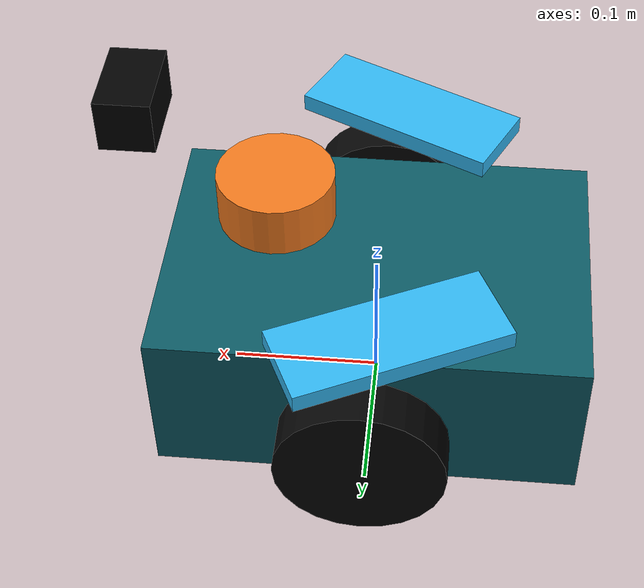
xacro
<?xml version="1.0"?>
<robot name="indoor_mapper_bot" xmlns:xacro="http://ros.org/wiki/xacro">
  <xacro:arg name="enable_3d_sensors" default="false" />

  <xacro:property name="base_length" value="0.28" />
  <xacro:property name="base_width" value="0.19" />
  <xacro:property name="base_height" value="0.11" />
  <xacro:property name="wheel_radius" value="0.055" />
  <xacro:property name="wheel_width" value="0.03" />
  <xacro:property name="wheel_y" value="0.125" />

  <link name="base_footprint" />

  <joint name="base_footprint_joint" type="fixed">
    <parent link="base_footprint" />
    <child link="base_link" />
    <origin xyz="0 0 0" />
  </joint>

  <link name="base_link">
    <inertial>
      <origin xyz="0 0 0.042" />
      <mass value="4.0" />
      <inertia ixx="0.026" ixy="0" ixz="0" iyy="0.032" iyz="0" izz="0.040" />
    </inertial>
    <visual>
      <origin xyz="0 0 ${base_height / 2.0}" />
      <geometry>
        <box size="${base_length} ${base_width} ${base_height}" />
      </geometry>
      <material name="body_teal">
        <color rgba="0.05 0.36 0.40 1" />
      </material>
    </visual>
    <collision name="base_collision">
      <origin xyz="0 0 ${base_height / 2.0 + 0.012}" />
      <geometry>
        <box size="${base_length} ${base_width} ${base_height}" />
      </geometry>
    </collision>
  </link>

  <link name="left_wheel_link">
    <inertial>
      <mass value="0.22" />
      <inertia ixx="0.00045" ixy="0" ixz="0" iyy="0.00045" iyz="0" izz="0.00045" />
    </inertial>
    <visual>
      <origin xyz="0 0 0" rpy="1.57079632679 0 0" />
      <geometry>
        <cylinder radius="${wheel_radius}" length="${wheel_width}" />
      </geometry>
      <material name="wheel_black">
        <color rgba="0.02 0.02 0.02 1" />
      </material>
    </visual>
    <collision>
      <origin xyz="0 0 0" rpy="1.57079632679 0 0" />
      <geometry>
        <cylinder radius="${wheel_radius}" length="${wheel_width}" />
      </geometry>
    </collision>
  </link>

  <link name="right_wheel_link">
    <inertial>
      <mass value="0.22" />
      <inertia ixx="0.00045" ixy="0" ixz="0" iyy="0.00045" iyz="0" izz="0.00045" />
    </inertial>
    <visual>
      <origin xyz="0 0 0" rpy="1.57079632679 0 0" />
      <geometry>
        <cylinder radius="${wheel_radius}" length="${wheel_width}" />
      </geometry>
      <material name="wheel_black" />
    </visual>
    <collision>
      <origin xyz="0 0 0" rpy="1.57079632679 0 0" />
      <geometry>
        <cylinder radius="${wheel_radius}" length="${wheel_width}" />
      </geometry>
    </collision>
  </link>

  <link name="caster_link">
    <inertial>
      <mass value="0.1" />
      <inertia ixx="0.0001" ixy="0" ixz="0" iyy="0.0001" iyz="0" izz="0.0001" />
    </inertial>
    <visual>
      <geometry>
        <sphere radius="0.024" />
      </geometry>
      <material name="wheel_black" />
    </visual>
    <collision name="left_rear_support_collision">
      <origin xyz="0 0.060 -0.006" />
      <geometry>
        <sphere radius="0.018" />
      </geometry>
    </collision>
    <collision name="right_rear_support_collision">
      <origin xyz="0 -0.060 -0.006" />
      <geometry>
        <sphere radius="0.018" />
      </geometry>
    </collision>
  </link>

  <link name="laser_link">
    <inertial>
      <mass value="0.2" />
      <inertia ixx="0.0004" ixy="0" ixz="0" iyy="0.0004" iyz="0" izz="0.0004" />
    </inertial>
    <visual>
      <geometry>
        <cylinder radius="0.038" length="0.035" />
      </geometry>
      <material name="laser_copper">
        <color rgba="0.95 0.48 0.12 1" />
      </material>
    </visual>
    <collision>
      <geometry>
        <cylinder radius="0.038" length="0.035" />
      </geometry>
    </collision>
  </link>

  <link name="camera_link">
    <inertial>
      <mass value="0.05" />
      <inertia ixx="0.00002" ixy="0" ixz="0" iyy="0.00002" iyz="0" izz="0.00002" />
    </inertial>
    <visual>
      <geometry>
        <box size="0.035 0.055 0.035" />
      </geometry>
      <material name="camera_black">
        <color rgba="0.01 0.01 0.01 1" />
      </material>
    </visual>
    <collision>
      <geometry>
        <box size="0.035 0.055 0.035" />
      </geometry>
    </collision>
  </link>

  <xacro:if value="$(arg enable_3d_sensors)">
    <link name="imu_link">
      <inertial>
        <mass value="0.02" />
        <inertia ixx="0.00001" ixy="0" ixz="0" iyy="0.00001" iyz="0" izz="0.00001" />
      </inertial>
      <visual>
        <geometry>
          <box size="0.035 0.028 0.012" />
        </geometry>
        <material name="imu_gray">
          <color rgba="0.18 0.20 0.22 1" />
        </material>
      </visual>
    </link>

    <link name="laser3d_link">
      <inertial>
        <mass value="0.18" />
        <inertia ixx="0.0003" ixy="0" ixz="0" iyy="0.0003" iyz="0" izz="0.0003" />
      </inertial>
      <visual>
        <geometry>
          <cylinder radius="0.034" length="0.045" />
        </geometry>
        <material name="laser3d_blue">
          <color rgba="0.10 0.22 0.95 1" />
        </material>
      </visual>
      <collision>
        <geometry>
          <cylinder radius="0.034" length="0.045" />
        </geometry>
      </collision>
    </link>
  </xacro:if>

  <link name="left_wing_link">
    <inertial><mass value="0.015" /><inertia ixx="0.00002" ixy="0" ixz="0" iyy="0.00002" iyz="0" izz="0.00003" /></inertial>
    <visual><geometry><box size="0.14 0.055 0.012" /></geometry><material name="wing_sky"><color rgba="0.20 0.72 0.95 1" /></material></visual>
  </link>

  <link name="right_wing_link">
    <inertial><mass value="0.015" /><inertia ixx="0.00002" ixy="0" ixz="0" iyy="0.00002" iyz="0" izz="0.00003" /></inertial>
    <visual><geometry><box size="0.14 0.055 0.012" /></geometry><material name="wing_sky" /></visual>
  </link>

  <joint name="left_wheel_joint" type="continuous">
    <parent link="base_link" />
    <child link="left_wheel_link" />
    <origin xyz="0 ${wheel_y} ${wheel_radius}" />
    <axis xyz="0 1 0" />
  </joint>

  <joint name="right_wheel_joint" type="continuous">
    <parent link="base_link" />
    <child link="right_wheel_link" />
    <origin xyz="0 -${wheel_y} ${wheel_radius}" />
    <axis xyz="0 1 0" />
  </joint>

  <joint name="caster_joint" type="fixed">
    <parent link="base_link" />
    <child link="caster_link" />
    <origin xyz="-0.105 0 0.024" />
  </joint>

  <joint name="laser_joint" type="fixed">
    <parent link="base_link" />
    <child link="laser_link" />
    <origin xyz="0.065 0 0.16" />
  </joint>

  <joint name="camera_joint" type="fixed">
    <parent link="base_link" />
    <child link="camera_link" />
    <origin xyz="0.15 0 0.23" />
  </joint>

  <xacro:if value="$(arg enable_3d_sensors)">
    <joint name="imu_joint" type="fixed">
      <parent link="base_link" />
      <child link="imu_link" />
      <origin xyz="0.0 0 0.205" />
    </joint>

    <joint name="laser3d_joint" type="fixed">
      <parent link="base_link" />
      <child link="laser3d_link" />
      <origin xyz="0.03 0 0.285" />
    </joint>
  </xacro:if>

  <joint name="left_wing_joint" type="fixed">
    <parent link="base_link" /><child link="left_wing_link" />
    <origin xyz="-0.015 0.105 0.145" rpy="0 0 0.45" />
  </joint>

  <joint name="right_wing_joint" type="fixed">
    <parent link="base_link" /><child link="right_wing_link" />
    <origin xyz="-0.015 -0.105 0.145" rpy="0 0 -0.45" />
  </joint>

  <gazebo reference="base_footprint">
    <sensor type="contact" name="base_contact_sensor">
      <always_on>true</always_on>
      <update_rate>40</update_rate>
      <contact>
        <collision>base_footprint_fixed_joint_lump__base_collision_collision</collision>
      </contact>
      <plugin name="gazebo_ros_bumper" filename="libgazebo_ros_bumper.so">
        <robotNamespace>/</robotNamespace>
        <bumperTopicName>bumper</bumperTopicName>
        <frameName>base_link</frameName>
      </plugin>
    </sensor>
  </gazebo>

  <gazebo reference="base_link">
    <material>Gazebo/Green</material>
    <gravity>false</gravity>
  </gazebo>

  <gazebo reference="left_wheel_link">
    <material>Gazebo/Black</material>
    <gravity>false</gravity>
    <mu1>1.0</mu1>
    <mu2>1.0</mu2>
    <kp>320000.0</kp>
    <kd>240.0</kd>
    <maxVel>0.04</maxVel>
    <minDepth>0.0005</minDepth>
  </gazebo>

  <gazebo reference="right_wheel_link">
    <material>Gazebo/Black</material>
    <gravity>false</gravity>
    <mu1>1.0</mu1>
    <mu2>1.0</mu2>
    <kp>320000.0</kp>
    <kd>240.0</kd>
    <maxVel>0.04</maxVel>
    <minDepth>0.0005</minDepth>
  </gazebo>

  <gazebo reference="caster_link">
    <material>Gazebo/Black</material>
    <gravity>false</gravity>
    <mu1>0.08</mu1>
    <mu2>0.08</mu2>
    <kp>180000.0</kp>
    <kd>260.0</kd>
    <maxVel>0.03</maxVel>
    <minDepth>0.0005</minDepth>
  </gazebo>

  <gazebo reference="left_wing_link"><material>Gazebo/SkyBlue</material></gazebo>
  <gazebo reference="right_wing_link"><material>Gazebo/SkyBlue</material></gazebo>

  <gazebo reference="laser_link">
    <material>Gazebo/Orange</material>
    <sensor type="ray" name="indoor_mapper_laser">
      <pose>0 0 0 0 0 0</pose>
      <visualize>false</visualize>
      <update_rate>12</update_rate>
      <ray>
        <scan>
          <horizontal>
            <samples>720</samples>
            <resolution>1</resolution>
            <min_angle>-3.14159265359</min_angle>
            <max_angle>3.14159265359</max_angle>
          </horizontal>
        </scan>
        <range>
          <min>0.12</min>
          <max>12.0</max>
          <resolution>0.01</resolution>
        </range>
        <noise>
          <type>gaussian</type>
          <mean>0.0</mean>
          <stddev>0.01</stddev>
        </noise>
      </ray>
      <plugin name="gazebo_ros_laser" filename="libgazebo_ros_laser.so">
        <robotNamespace>/</robotNamespace>
        <topicName>scan</topicName>
        <frameName>laser_link</frameName>
      </plugin>
    </sensor>
  </gazebo>

  <xacro:if value="$(arg enable_3d_sensors)">
    <gazebo reference="imu_link">
      <material>Gazebo/DarkGrey</material>
      <sensor type="imu" name="indoor_mapper_imu_sensor">
        <always_on>true</always_on>
        <update_rate>100</update_rate>
        <visualize>false</visualize>
      </sensor>
    </gazebo>

    <gazebo reference="laser3d_link">
      <material>Gazebo/Blue</material>
      <sensor type="ray" name="indoor_mapper_block_laser_3d">
        <pose>0 0 0 0 0 0</pose>
        <visualize>false</visualize>
        <always_on>true</always_on>
        <update_rate>8</update_rate>
        <ray>
          <scan>
            <horizontal>
              <samples>240</samples>
              <resolution>1</resolution>
              <min_angle>-3.14159265359</min_angle>
              <max_angle>3.14159265359</max_angle>
            </horizontal>
            <vertical>
              <samples>24</samples>
              <resolution>1</resolution>
              <min_angle>-0.35</min_angle>
              <max_angle>0.45</max_angle>
            </vertical>
          </scan>
          <range>
            <min>0.18</min>
            <max>6.0</max>
            <resolution>0.025</resolution>
          </range>
          <noise>
            <type>gaussian</type>
            <mean>0.0</mean>
            <stddev>0.0</stddev>
          </noise>
        </ray>
        <plugin name="indoor_mapper_block_laser_3d_controller" filename="libgazebo_ros_block_laser.so">
          <topicName>/block_laser_3d</topicName>
          <frameName>laser3d_link</frameName>
          <gaussianNoise>0.0</gaussianNoise>
          <updateRate>8</updateRate>
        </plugin>
      </sensor>
    </gazebo>

    <gazebo>
      <plugin name="indoor_mapper_imu" filename="libgazebo_ros_imu.so">
        <alwaysOn>true</alwaysOn>
        <bodyName>imu_link</bodyName>
        <frameName>imu_link</frameName>
        <topicName>imu_raw</topicName>
        <serviceName>imu_service</serviceName>
        <gaussianNoise>0.0</gaussianNoise>
        <updateRate>100</updateRate>
      </plugin>
    </gazebo>
  </xacro:if>

  <gazebo reference="camera_link">
    <material>Gazebo/Black</material>
    <sensor type="camera" name="robot_view_camera">
      <pose>0 0 0 0 0 0</pose>
      <visualize>false</visualize>
      <update_rate>15</update_rate>
      <camera>
        <horizontal_fov>1.047</horizontal_fov>
        <image>
          <width>640</width>
          <height>480</height>
          <format>R8G8B8</format>
        </image>
        <clip>
          <near>0.05</near>
          <far>20.0</far>
        </clip>
      </camera>
      <plugin name="gazebo_ros_robot_view_camera" filename="libgazebo_ros_camera.so">
        <robotNamespace>/</robotNamespace>
        <cameraName>robot_view</cameraName>
        <imageTopicName>image_raw</imageTopicName>
        <cameraInfoTopicName>camera_info</cameraInfoTopicName>
        <frameName>camera_link</frameName>
      </plugin>
    </sensor>
  </gazebo>

  <gazebo>
    <plugin name="indoor_mapper_planar_drive" filename="libgazebo_ros_planar_move.so">
      <robotNamespace>/</robotNamespace>
      <alwaysOn>true</alwaysOn>
      <updateRate>50</updateRate>
      <commandTopic>cmd_vel</commandTopic>
      <odometryTopic>odom</odometryTopic>
      <odometryRate>50</odometryRate>
      <odometryFrame>odom</odometryFrame>
      <robotBaseFrame>base_footprint</robotBaseFrame>
    </plugin>
  </gazebo>
</robot>
